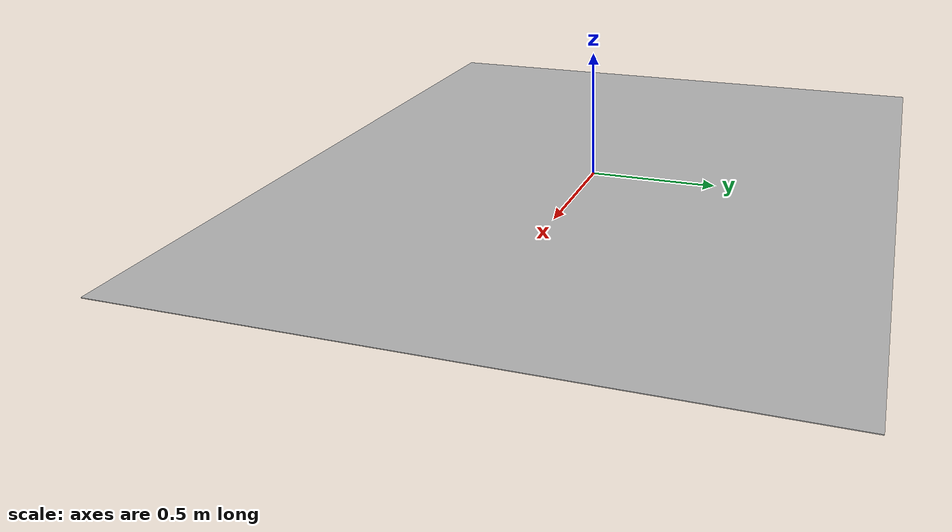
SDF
<?xml version="1.0"?>
<sdf version="1.6">
<model name="floor">
  <static>true</static>
    <link name="link">
      <collision name="collision">
        <geometry>
          <plane>
            <normal>0 0 1</normal>
            <size>3 2.4</size>
          </plane>
        </geometry>
        <surface>
          <friction>
            <ode>
              <mu>100</mu>
              <mu2>50</mu2>
            </ode>
          </friction>
        </surface>
      </collision>
      <visual name="visual">
        <cast_shadows>false</cast_shadows>
        <geometry>
          <plane>
            <normal>0 0 1</normal>
            <size>3 2.4</size>
          </plane>
        </geometry>
        <material>
          <script>
            <uri>model://floor/materials/scripts</uri>
            <uri>model://floor/materials/textures</uri>
            <name>Floor/Image</name>
          </script>
          Gazebo/Gray
        </material>
      </visual>
    </link>
  </model>
</sdf>
